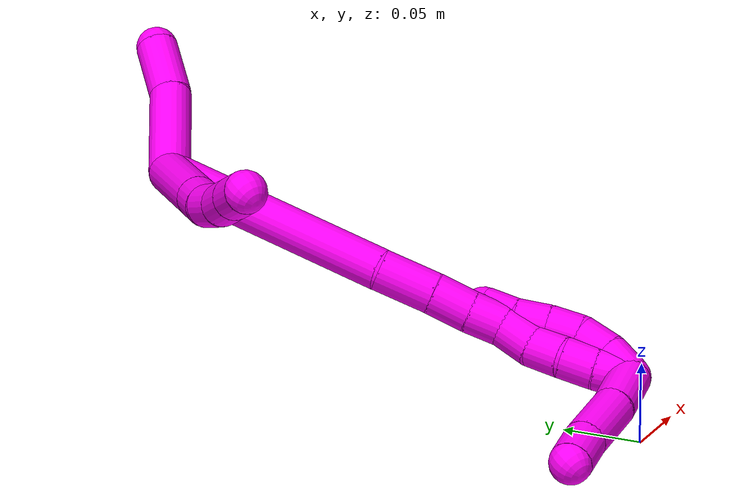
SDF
<sdf version="1.7">
 <world name="default">
  <model name="10">
   <static>0</static>
   <link name="10">
    <collision name="collision-cylinder-e_1_2_8">
     <pose>-0.01596 0.012603 -0.026974 -2.7045 -0.492077 1.69335</pose>
     <geometry><cylinder><radius>0.0125</radius><length>0.067562</length></cylinder></geometry>
     <surface>
      <friction><ode><mu>1.16</mu><mu2>1.16</mu2><slip1>0</slip1><slip2>0</slip2></ode></friction>
      <contact><ode><kp>1e+06</kp><kd>1</kd><max_vel>0</max_vel><min_depth>0.001</min_depth></ode></contact>
     </surface>
    </collision>
    <visual name="visual-cylinder-e_1_2_8">
     <pose>-0.01596 0.012603 -0.026974 -2.7045 -0.492077 1.69335</pose>
     <geometry><cylinder><radius>0.0125</radius><length>0.067562</length></cylinder></geometry>
     <material><ambient>1 0 0.964706 1</ambient></material>
    </visual>
    <collision name="collision-cylinder-e_2_8_9">
     <pose>-0.037316 0.029633 -0.062728 -2.67463 -0.501857 1.64569</pose>
     <geometry><cylinder><radius>0.0125</radius><length>0.022432</length></cylinder></geometry>
     <surface>
      <friction><ode><mu>1.16</mu><mu2>1.16</mu2><slip1>0</slip1><slip2>0</slip2></ode></friction>
      <contact><ode><kp>1e+06</kp><kd>1</kd><max_vel>0</max_vel><min_depth>0.001</min_depth></ode></contact>
     </surface>
    </collision>
    <visual name="visual-cylinder-e_2_8_9">
     <pose>-0.037316 0.029633 -0.062728 -2.67463 -0.501857 1.64569</pose>
     <geometry><cylinder><radius>0.0125</radius><length>0.022432</length></cylinder></geometry>
     <material><ambient>1 0 0.964706 1</ambient></material>
    </visual>
    <collision name="collision-cylinder-e_3_9_10">
     <pose>-0.049527 0.035805 -0.078617 -2.90077 -0.749785 2.54496</pose>
     <geometry><cylinder><radius>0.0125</radius><length>0.020004</length></cylinder></geometry>
     <surface>
      <friction><ode><mu>1.16</mu><mu2>1.16</mu2><slip1>0</slip1><slip2>0</slip2></ode></friction>
      <contact><ode><kp>1e+06</kp><kd>1</kd><max_vel>0</max_vel><min_depth>0.001</min_depth></ode></contact>
     </surface>
    </collision>
    <visual name="visual-cylinder-e_3_9_10">
     <pose>-0.049527 0.035805 -0.078617 -2.90077 -0.749785 2.54496</pose>
     <geometry><cylinder><radius>0.0125</radius><length>0.020004</length></cylinder></geometry>
     <material><ambient>1 0 0.964706 1</ambient></material>
    </visual>
    <collision name="collision-cylinder-e_4_10_11">
     <pose>-0.06421 0.039827 -0.091465 -2.76411 -0.905334 2.3931</pose>
     <geometry><cylinder><radius>0.0125</radius><length>0.02</length></cylinder></geometry>
     <surface>
      <friction><ode><mu>1.16</mu><mu2>1.16</mu2><slip1>0</slip1><slip2>0</slip2></ode></friction>
      <contact><ode><kp>1e+06</kp><kd>1</kd><max_vel>0</max_vel><min_depth>0.001</min_depth></ode></contact>
     </surface>
    </collision>
    <visual name="visual-cylinder-e_4_10_11">
     <pose>-0.06421 0.039827 -0.091465 -2.76411 -0.905334 2.3931</pose>
     <geometry><cylinder><radius>0.0125</radius><length>0.02</length></cylinder></geometry>
     <material><ambient>1 0 0.964706 1</ambient></material>
    </visual>
    <collision name="collision-cylinder-e_5_11_6">
     <pose>-0.079886 0.044473 -0.102985 -2.75244 -0.896098 2.36338</pose>
     <geometry><cylinder><radius>0.0125</radius><length>0.020002</length></cylinder></geometry>
     <surface>
      <friction><ode><mu>1.16</mu><mu2>1.16</mu2><slip1>0</slip1><slip2>0</slip2></ode></friction>
      <contact><ode><kp>1e+06</kp><kd>1</kd><max_vel>0</max_vel><min_depth>0.001</min_depth></ode></contact>
     </surface>
    </collision>
    <visual name="visual-cylinder-e_5_11_6">
     <pose>-0.079886 0.044473 -0.102985 -2.75244 -0.896098 2.36338</pose>
     <geometry><cylinder><radius>0.0125</radius><length>0.020002</length></cylinder></geometry>
     <material><ambient>1 0 0.964706 1</ambient></material>
    </visual>
    <collision name="collision-cylinder-e_1_2_12">
     <pose>-0.005033 -0.015796 0.026271 0.541356 -0.162727 -0.045247</pose>
     <geometry><cylinder><radius>0.0125</radius><length>0.062129</length></cylinder></geometry>
     <surface>
      <friction><ode><mu>1.16</mu><mu2>1.16</mu2><slip1>0</slip1><slip2>0</slip2></ode></friction>
      <contact><ode><kp>1e+06</kp><kd>1</kd><max_vel>0</max_vel><min_depth>0.001</min_depth></ode></contact>
     </surface>
    </collision>
    <visual name="visual-cylinder-e_1_2_12">
     <pose>-0.005033 -0.015796 0.026271 0.541356 -0.162727 -0.045247</pose>
     <geometry><cylinder><radius>0.0125</radius><length>0.062129</length></cylinder></geometry>
     <material><ambient>1 0 0.964706 1</ambient></material>
    </visual>
    <collision name="collision-cylinder-e_2_12_5">
     <pose>-0.013149 -0.037142 0.070381 0.301604 -0.163571 -0.02491</pose>
     <geometry><cylinder><radius>0.0125</radius><length>0.037871</length></cylinder></geometry>
     <surface>
      <friction><ode><mu>1.16</mu><mu2>1.16</mu2><slip1>0</slip1><slip2>0</slip2></ode></friction>
      <contact><ode><kp>1e+06</kp><kd>1</kd><max_vel>0</max_vel><min_depth>0.001</min_depth></ode></contact>
     </surface>
    </collision>
    <visual name="visual-cylinder-e_2_12_5">
     <pose>-0.013149 -0.037142 0.070381 0.301604 -0.163571 -0.02491</pose>
     <geometry><cylinder><radius>0.0125</radius><length>0.037871</length></cylinder></geometry>
     <material><ambient>1 0 0.964706 1</ambient></material>
    </visual>
    <collision name="collision-cylinder-e_1_2_13">
     <pose>-0.006511 -0.033233 -0.061341 2.64508 -0.093059 -0.363337</pose>
     <geometry><cylinder><radius>0.0125</radius><length>0.140137</length></cylinder></geometry>
     <surface>
      <friction><ode><mu>1.16</mu><mu2>1.16</mu2><slip1>0</slip1><slip2>0</slip2></ode></friction>
      <contact><ode><kp>1e+06</kp><kd>1</kd><max_vel>0</max_vel><min_depth>0.001</min_depth></ode></contact>
     </surface>
    </collision>
    <visual name="visual-cylinder-e_1_2_13">
     <pose>-0.006511 -0.033233 -0.061341 2.64508 -0.093059 -0.363337</pose>
     <geometry><cylinder><radius>0.0125</radius><length>0.140137</length></cylinder></geometry>
     <material><ambient>1 0 0.964706 1</ambient></material>
    </visual>
    <collision name="collision-cylinder-e_2_13_14">
     <pose>-0.013008 -0.076657 -0.136206 2.49582 0.00083 0.00248</pose>
     <geometry><cylinder><radius>0.0125</radius><length>0.033868</length></cylinder></geometry>
     <surface>
      <friction><ode><mu>1.16</mu><mu2>1.16</mu2><slip1>0</slip1><slip2>0</slip2></ode></friction>
      <contact><ode><kp>1e+06</kp><kd>1</kd><max_vel>0</max_vel><min_depth>0.001</min_depth></ode></contact>
     </surface>
    </collision>
    <visual name="visual-cylinder-e_2_13_14">
     <pose>-0.013008 -0.076657 -0.136206 2.49582 0.00083 0.00248</pose>
     <geometry><cylinder><radius>0.0125</radius><length>0.033868</length></cylinder></geometry>
     <material><ambient>1 0 0.964706 1</ambient></material>
    </visual>
    <collision name="collision-cylinder-e_3_14_15">
     <pose>-0.012419 -0.093823 -0.15931 2.51228 0.048504 0.148782</pose>
     <geometry><cylinder><radius>0.0125</radius><length>0.023727</length></cylinder></geometry>
     <surface>
      <friction><ode><mu>1.16</mu><mu2>1.16</mu2><slip1>0</slip1><slip2>0</slip2></ode></friction>
      <contact><ode><kp>1e+06</kp><kd>1</kd><max_vel>0</max_vel><min_depth>0.001</min_depth></ode></contact>
     </surface>
    </collision>
    <visual name="visual-cylinder-e_3_14_15">
     <pose>-0.012419 -0.093823 -0.15931 2.51228 0.048504 0.148782</pose>
     <geometry><cylinder><radius>0.0125</radius><length>0.023727</length></cylinder></geometry>
     <material><ambient>1 0 0.964706 1</ambient></material>
    </visual>
    <collision name="collision-cylinder-e_4_15_16">
     <pose>-0.012169 -0.107121 -0.177253 2.49421 -0.030982 -0.09229</pose>
     <geometry><cylinder><radius>0.0125</radius><length>0.020981</length></cylinder></geometry>
     <surface>
      <friction><ode><mu>1.16</mu><mu2>1.16</mu2><slip1>0</slip1><slip2>0</slip2></ode></friction>
      <contact><ode><kp>1e+06</kp><kd>1</kd><max_vel>0</max_vel><min_depth>0.001</min_depth></ode></contact>
     </surface>
    </collision>
    <visual name="visual-cylinder-e_4_15_16">
     <pose>-0.012169 -0.107121 -0.177253 2.49421 -0.030982 -0.09229</pose>
     <geometry><cylinder><radius>0.0125</radius><length>0.020981</length></cylinder></geometry>
     <material><ambient>1 0 0.964706 1</ambient></material>
    </visual>
    <collision name="collision-cylinder-e_5_16_17">
     <pose>-0.012345 -0.117109 -0.195533 2.78766 0.014055 0.078552</pose>
     <geometry><cylinder><radius>0.0125</radius><length>0.021144</length></cylinder></geometry>
     <surface>
      <friction><ode><mu>1.16</mu><mu2>1.16</mu2><slip1>0</slip1><slip2>0</slip2></ode></friction>
      <contact><ode><kp>1e+06</kp><kd>1</kd><max_vel>0</max_vel><min_depth>0.001</min_depth></ode></contact>
     </surface>
    </collision>
    <visual name="visual-cylinder-e_5_16_17">
     <pose>-0.012345 -0.117109 -0.195533 2.78766 0.014055 0.078552</pose>
     <geometry><cylinder><radius>0.0125</radius><length>0.021144</length></cylinder></geometry>
     <material><ambient>1 0 0.964706 1</ambient></material>
    </visual>
    <collision name="collision-cylinder-e_6_17_18">
     <pose>-0.0147 -0.124562 -0.214361 2.73962 -0.252919 -1.1158</pose>
     <geometry><cylinder><radius>0.0125</radius><length>0.020006</length></cylinder></geometry>
     <surface>
      <friction><ode><mu>1.16</mu><mu2>1.16</mu2><slip1>0</slip1><slip2>0</slip2></ode></friction>
      <contact><ode><kp>1e+06</kp><kd>1</kd><max_vel>0</max_vel><min_depth>0.001</min_depth></ode></contact>
     </surface>
    </collision>
    <visual name="visual-cylinder-e_6_17_18">
     <pose>-0.0147 -0.124562 -0.214361 2.73962 -0.252919 -1.1158</pose>
     <geometry><cylinder><radius>0.0125</radius><length>0.020006</length></cylinder></geometry>
     <material><ambient>1 0 0.964706 1</ambient></material>
    </visual>
    <collision name="collision-cylinder-e_7_18_19">
     <pose>-0.018711 -0.133779 -0.231593 2.5634 -0.150718 -0.497194</pose>
     <geometry><cylinder><radius>0.0125</radius><length>0.020095</length></cylinder></geometry>
     <surface>
      <friction><ode><mu>1.16</mu><mu2>1.16</mu2><slip1>0</slip1><slip2>0</slip2></ode></friction>
      <contact><ode><kp>1e+06</kp><kd>1</kd><max_vel>0</max_vel><min_depth>0.001</min_depth></ode></contact>
     </surface>
    </collision>
    <visual name="visual-cylinder-e_7_18_19">
     <pose>-0.018711 -0.133779 -0.231593 2.5634 -0.150718 -0.497194</pose>
     <geometry><cylinder><radius>0.0125</radius><length>0.020095</length></cylinder></geometry>
     <material><ambient>1 0 0.964706 1</ambient></material>
    </visual>
    <collision name="collision-cylinder-e_8_19_1">
     <pose>-0.022389 -0.145104 -0.24772 2.4948 -0.218139 -0.631568</pose>
     <geometry><cylinder><radius>0.0125</radius><length>0.020043</length></cylinder></geometry>
     <surface>
      <friction><ode><mu>1.16</mu><mu2>1.16</mu2><slip1>0</slip1><slip2>0</slip2></ode></friction>
      <contact><ode><kp>1e+06</kp><kd>1</kd><max_vel>0</max_vel><min_depth>0.001</min_depth></ode></contact>
     </surface>
    </collision>
    <visual name="visual-cylinder-e_8_19_1">
     <pose>-0.022389 -0.145104 -0.24772 2.4948 -0.218139 -0.631568</pose>
     <geometry><cylinder><radius>0.0125</radius><length>0.020043</length></cylinder></geometry>
     <material><ambient>1 0 0.964706 1</ambient></material>
    </visual>
    <collision name="collision-cylinder-e_1_1_20">
     <pose>-0.025497 -0.13668 -0.264982 -2.15434 -0.054725 0.101647</pose>
     <geometry><cylinder><radius>0.0125</radius><length>0.034371</length></cylinder></geometry>
     <surface>
      <friction><ode><mu>1.16</mu><mu2>1.16</mu2><slip1>0</slip1><slip2>0</slip2></ode></friction>
      <contact><ode><kp>1e+06</kp><kd>1</kd><max_vel>0</max_vel><min_depth>0.001</min_depth></ode></contact>
     </surface>
    </collision>
    <visual name="visual-cylinder-e_1_1_20">
     <pose>-0.025497 -0.13668 -0.264982 -2.15434 -0.054725 0.101647</pose>
     <geometry><cylinder><radius>0.0125</radius><length>0.034371</length></cylinder></geometry>
     <material><ambient>1 0 0.964706 1</ambient></material>
    </visual>
    <collision name="collision-cylinder-e_2_20_21">
     <pose>-0.02725 -0.104009 -0.283508 -2.02985 -0.039678 0.063858</pose>
     <geometry><cylinder><radius>0.0125</radius><length>0.040973</length></cylinder></geometry>
     <surface>
      <friction><ode><mu>1.16</mu><mu2>1.16</mu2><slip1>0</slip1><slip2>0</slip2></ode></friction>
      <contact><ode><kp>1e+06</kp><kd>1</kd><max_vel>0</max_vel><min_depth>0.001</min_depth></ode></contact>
     </surface>
    </collision>
    <visual name="visual-cylinder-e_2_20_21">
     <pose>-0.02725 -0.104009 -0.283508 -2.02985 -0.039678 0.063858</pose>
     <geometry><cylinder><radius>0.0125</radius><length>0.040973</length></cylinder></geometry>
     <material><ambient>1 0 0.964706 1</ambient></material>
    </visual>
    <collision name="collision-cylinder-e_3_21_4">
     <pose>-0.028841 -0.075165 -0.299002 -2.12018 -0.063173 0.11267</pose>
     <geometry><cylinder><radius>0.0125</radius><length>0.024656</length></cylinder></geometry>
     <surface>
      <friction><ode><mu>1.16</mu><mu2>1.16</mu2><slip1>0</slip1><slip2>0</slip2></ode></friction>
      <contact><ode><kp>1e+06</kp><kd>1</kd><max_vel>0</max_vel><min_depth>0.001</min_depth></ode></contact>
     </surface>
    </collision>
    <visual name="visual-cylinder-e_3_21_4">
     <pose>-0.028841 -0.075165 -0.299002 -2.12018 -0.063173 0.11267</pose>
     <geometry><cylinder><radius>0.0125</radius><length>0.024656</length></cylinder></geometry>
     <material><ambient>1 0 0.964706 1</ambient></material>
    </visual>
    <collision name="collision-cylinder-e_1_1_22">
     <pose>-0.024559 -0.150811 -0.245529 -0.018905 -0.000174 2e-06</pose>
     <geometry><cylinder><radius>0.0125</radius><length>0.02</length></cylinder></geometry>
     <surface>
      <friction><ode><mu>1.16</mu><mu2>1.16</mu2><slip1>0</slip1><slip2>0</slip2></ode></friction>
      <contact><ode><kp>1e+06</kp><kd>1</kd><max_vel>0</max_vel><min_depth>0.001</min_depth></ode></contact>
     </surface>
    </collision>
    <visual name="visual-cylinder-e_1_1_22">
     <pose>-0.024559 -0.150811 -0.245529 -0.018905 -0.000174 2e-06</pose>
     <geometry><cylinder><radius>0.0125</radius><length>0.02</length></cylinder></geometry>
     <material><ambient>1 0 0.964706 1</ambient></material>
    </visual>
    <collision name="collision-cylinder-e_2_22_23">
     <pose>-0.02399 -0.147521 -0.226041 -0.315834 0.057104 -0.009096</pose>
     <geometry><cylinder><radius>0.0125</radius><length>0.02</length></cylinder></geometry>
     <surface>
      <friction><ode><mu>1.16</mu><mu2>1.16</mu2><slip1>0</slip1><slip2>0</slip2></ode></friction>
      <contact><ode><kp>1e+06</kp><kd>1</kd><max_vel>0</max_vel><min_depth>0.001</min_depth></ode></contact>
     </surface>
    </collision>
    <visual name="visual-cylinder-e_2_22_23">
     <pose>-0.02399 -0.147521 -0.226041 -0.315834 0.057104 -0.009096</pose>
     <geometry><cylinder><radius>0.0125</radius><length>0.02</length></cylinder></geometry>
     <material><ambient>1 0 0.964706 1</ambient></material>
    </visual>
    <collision name="collision-cylinder-e_3_23_24">
     <pose>-0.021334 -0.139374 -0.208173 -0.542115 0.210085 -0.058581</pose>
     <geometry><cylinder><radius>0.0125</radius><length>0.02</length></cylinder></geometry>
     <surface>
      <friction><ode><mu>1.16</mu><mu2>1.16</mu2><slip1>0</slip1><slip2>0</slip2></ode></friction>
      <contact><ode><kp>1e+06</kp><kd>1</kd><max_vel>0</max_vel><min_depth>0.001</min_depth></ode></contact>
     </surface>
    </collision>
    <visual name="visual-cylinder-e_3_23_24">
     <pose>-0.021334 -0.139374 -0.208173 -0.542115 0.210085 -0.058581</pose>
     <geometry><cylinder><radius>0.0125</radius><length>0.02</length></cylinder></geometry>
     <material><ambient>1 0 0.964706 1</ambient></material>
    </visual>
    <collision name="collision-cylinder-e_4_24_25">
     <pose>-0.017023 -0.127912 -0.192455 -0.718294 0.224429 -0.084562</pose>
     <geometry><cylinder><radius>0.0125</radius><length>0.02</length></cylinder></geometry>
     <surface>
      <friction><ode><mu>1.16</mu><mu2>1.16</mu2><slip1>0</slip1><slip2>0</slip2></ode></friction>
      <contact><ode><kp>1e+06</kp><kd>1</kd><max_vel>0</max_vel><min_depth>0.001</min_depth></ode></contact>
     </surface>
    </collision>
    <visual name="visual-cylinder-e_4_24_25">
     <pose>-0.017023 -0.127912 -0.192455 -0.718294 0.224429 -0.084562</pose>
     <geometry><cylinder><radius>0.0125</radius><length>0.02</length></cylinder></geometry>
     <material><ambient>1 0 0.964706 1</ambient></material>
    </visual>
    <collision name="collision-cylinder-e_5_25_3">
     <pose>-0.012623 -0.117272 -0.176315 -0.447609 0.219162 -0.050075</pose>
     <geometry><cylinder><radius>0.0125</radius><length>0.02</length></cylinder></geometry>
     <surface>
      <friction><ode><mu>1.16</mu><mu2>1.16</mu2><slip1>0</slip1><slip2>0</slip2></ode></friction>
      <contact><ode><kp>1e+06</kp><kd>1</kd><max_vel>0</max_vel><min_depth>0.001</min_depth></ode></contact>
     </surface>
    </collision>
    <visual name="visual-cylinder-e_5_25_3">
     <pose>-0.012623 -0.117272 -0.176315 -0.447609 0.219162 -0.050075</pose>
     <geometry><cylinder><radius>0.0125</radius><length>0.02</length></cylinder></geometry>
     <material><ambient>1 0 0.964706 1</ambient></material>
    </visual>
    <collision name="collision-sphere-3">
     <pose>-0.010449 -0.113047 -0.167516 0 -0 0</pose>
     <geometry><sphere><radius>0.0125</radius></sphere></geometry>
     <surface>
      <friction><ode><mu>1.16</mu><mu2>1.16</mu2><slip1>0</slip1><slip2>0</slip2></ode></friction>
      <contact><ode><kp>1e+06</kp><kd>1</kd><max_vel>0</max_vel><min_depth>0.001</min_depth></ode></contact>
     </surface>
    </collision>
    <visual name="visual-sphere-3">
     <pose>-0.010449 -0.113047 -0.167516 0 -0 0</pose>
     <geometry><sphere><radius>0.0125</radius></sphere></geometry>
     <material><ambient>1 0 0.964706 1</ambient></material>
    </visual>
    <collision name="collision-sphere-25">
     <pose>-0.014797 -0.121496 -0.185115 0 -0 0</pose>
     <geometry><sphere><radius>0.0125</radius></sphere></geometry>
     <surface>
      <friction><ode><mu>1.16</mu><mu2>1.16</mu2><slip1>0</slip1><slip2>0</slip2></ode></friction>
      <contact><ode><kp>1e+06</kp><kd>1</kd><max_vel>0</max_vel><min_depth>0.001</min_depth></ode></contact>
     </surface>
    </collision>
    <visual name="visual-sphere-25">
     <pose>-0.014797 -0.121496 -0.185115 0 -0 0</pose>
     <geometry><sphere><radius>0.0125</radius></sphere></geometry>
     <material><ambient>1 0 0.964706 1</ambient></material>
    </visual>
    <collision name="collision-sphere-24">
     <pose>-0.019248 -0.134328 -0.199795 0 -0 0</pose>
     <geometry><sphere><radius>0.0125</radius></sphere></geometry>
     <surface>
      <friction><ode><mu>1.16</mu><mu2>1.16</mu2><slip1>0</slip1><slip2>0</slip2></ode></friction>
      <contact><ode><kp>1e+06</kp><kd>1</kd><max_vel>0</max_vel><min_depth>0.001</min_depth></ode></contact>
     </surface>
    </collision>
    <visual name="visual-sphere-24">
     <pose>-0.019248 -0.134328 -0.199795 0 -0 0</pose>
     <geometry><sphere><radius>0.0125</radius></sphere></geometry>
     <material><ambient>1 0 0.964706 1</ambient></material>
    </visual>
    <collision name="collision-sphere-23">
     <pose>-0.023419 -0.14442 -0.216551 0 -0 0</pose>
     <geometry><sphere><radius>0.0125</radius></sphere></geometry>
     <surface>
      <friction><ode><mu>1.16</mu><mu2>1.16</mu2><slip1>0</slip1><slip2>0</slip2></ode></friction>
      <contact><ode><kp>1e+06</kp><kd>1</kd><max_vel>0</max_vel><min_depth>0.001</min_depth></ode></contact>
     </surface>
    </collision>
    <visual name="visual-sphere-23">
     <pose>-0.023419 -0.14442 -0.216551 0 -0 0</pose>
     <geometry><sphere><radius>0.0125</radius></sphere></geometry>
     <material><ambient>1 0 0.964706 1</ambient></material>
    </visual>
    <collision name="collision-sphere-22">
     <pose>-0.024561 -0.150622 -0.235531 0 -0 0</pose>
     <geometry><sphere><radius>0.0125</radius></sphere></geometry>
     <surface>
      <friction><ode><mu>1.16</mu><mu2>1.16</mu2><slip1>0</slip1><slip2>0</slip2></ode></friction>
      <contact><ode><kp>1e+06</kp><kd>1</kd><max_vel>0</max_vel><min_depth>0.001</min_depth></ode></contact>
     </surface>
    </collision>
    <visual name="visual-sphere-22">
     <pose>-0.024561 -0.150622 -0.235531 0 -0 0</pose>
     <geometry><sphere><radius>0.0125</radius></sphere></geometry>
     <material><ambient>1 0 0.964706 1</ambient></material>
    </visual>
    <collision name="collision-sphere-4">
     <pose>-0.029619 -0.064672 -0.305427 0 -0 0</pose>
     <geometry><sphere><radius>0.0125</radius></sphere></geometry>
     <surface>
      <friction><ode><mu>1.16</mu><mu2>1.16</mu2><slip1>0</slip1><slip2>0</slip2></ode></friction>
      <contact><ode><kp>1e+06</kp><kd>1</kd><max_vel>0</max_vel><min_depth>0.001</min_depth></ode></contact>
     </surface>
    </collision>
    <visual name="visual-sphere-4">
     <pose>-0.029619 -0.064672 -0.305427 0 -0 0</pose>
     <geometry><sphere><radius>0.0125</radius></sphere></geometry>
     <material><ambient>1 0 0.964706 1</ambient></material>
    </visual>
    <collision name="collision-sphere-21">
     <pose>-0.028063 -0.085658 -0.292578 0 -0 0</pose>
     <geometry><sphere><radius>0.0125</radius></sphere></geometry>
     <surface>
      <friction><ode><mu>1.16</mu><mu2>1.16</mu2><slip1>0</slip1><slip2>0</slip2></ode></friction>
      <contact><ode><kp>1e+06</kp><kd>1</kd><max_vel>0</max_vel><min_depth>0.001</min_depth></ode></contact>
     </surface>
    </collision>
    <visual name="visual-sphere-21">
     <pose>-0.028063 -0.085658 -0.292578 0 -0 0</pose>
     <geometry><sphere><radius>0.0125</radius></sphere></geometry>
     <material><ambient>1 0 0.964706 1</ambient></material>
    </visual>
    <collision name="collision-sphere-20">
     <pose>-0.026437 -0.12236 -0.274437 0 -0 0</pose>
     <geometry><sphere><radius>0.0125</radius></sphere></geometry>
     <surface>
      <friction><ode><mu>1.16</mu><mu2>1.16</mu2><slip1>0</slip1><slip2>0</slip2></ode></friction>
      <contact><ode><kp>1e+06</kp><kd>1</kd><max_vel>0</max_vel><min_depth>0.001</min_depth></ode></contact>
     </surface>
    </collision>
    <visual name="visual-sphere-20">
     <pose>-0.026437 -0.12236 -0.274437 0 -0 0</pose>
     <geometry><sphere><radius>0.0125</radius></sphere></geometry>
     <material><ambient>1 0 0.964706 1</ambient></material>
    </visual>
    <collision name="collision-sphere-6">
     <pose>-0.087696 0.046843 -0.108765 0 -0 0</pose>
     <geometry><sphere><radius>0.0125</radius></sphere></geometry>
     <surface>
      <friction><ode><mu>1.16</mu><mu2>1.16</mu2><slip1>0</slip1><slip2>0</slip2></ode></friction>
      <contact><ode><kp>1e+06</kp><kd>1</kd><max_vel>0</max_vel><min_depth>0.001</min_depth></ode></contact>
     </surface>
    </collision>
    <visual name="visual-sphere-6">
     <pose>-0.087696 0.046843 -0.108765 0 -0 0</pose>
     <geometry><sphere><radius>0.0125</radius></sphere></geometry>
     <material><ambient>1 0 0.964706 1</ambient></material>
    </visual>
    <collision name="collision-sphere-11">
     <pose>-0.072076 0.042102 -0.097205 0 -0 0</pose>
     <geometry><sphere><radius>0.0125</radius></sphere></geometry>
     <surface>
      <friction><ode><mu>1.16</mu><mu2>1.16</mu2><slip1>0</slip1><slip2>0</slip2></ode></friction>
      <contact><ode><kp>1e+06</kp><kd>1</kd><max_vel>0</max_vel><min_depth>0.001</min_depth></ode></contact>
     </surface>
    </collision>
    <visual name="visual-sphere-11">
     <pose>-0.072076 0.042102 -0.097205 0 -0 0</pose>
     <geometry><sphere><radius>0.0125</radius></sphere></geometry>
     <material><ambient>1 0 0.964706 1</ambient></material>
    </visual>
    <collision name="collision-sphere-10">
     <pose>-0.056343 0.037551 -0.085725 0 -0 0</pose>
     <geometry><sphere><radius>0.0125</radius></sphere></geometry>
     <surface>
      <friction><ode><mu>1.16</mu><mu2>1.16</mu2><slip1>0</slip1><slip2>0</slip2></ode></friction>
      <contact><ode><kp>1e+06</kp><kd>1</kd><max_vel>0</max_vel><min_depth>0.001</min_depth></ode></contact>
     </surface>
    </collision>
    <visual name="visual-sphere-10">
     <pose>-0.056343 0.037551 -0.085725 0 -0 0</pose>
     <geometry><sphere><radius>0.0125</radius></sphere></geometry>
     <material><ambient>1 0 0.964706 1</ambient></material>
    </visual>
    <collision name="collision-sphere-9">
     <pose>-0.042711 0.034059 -0.071508 0 -0 0</pose>
     <geometry><sphere><radius>0.0125</radius></sphere></geometry>
     <surface>
      <friction><ode><mu>1.16</mu><mu2>1.16</mu2><slip1>0</slip1><slip2>0</slip2></ode></friction>
      <contact><ode><kp>1e+06</kp><kd>1</kd><max_vel>0</max_vel><min_depth>0.001</min_depth></ode></contact>
     </surface>
    </collision>
    <visual name="visual-sphere-9">
     <pose>-0.042711 0.034059 -0.071508 0 -0 0</pose>
     <geometry><sphere><radius>0.0125</radius></sphere></geometry>
     <material><ambient>1 0 0.964706 1</ambient></material>
    </visual>
    <collision name="collision-sphere-2">
     <geometry><sphere><radius>0.0125</radius></sphere></geometry>
     <surface>
      <friction><ode><mu>1.16</mu><mu2>1.16</mu2><slip1>0</slip1><slip2>0</slip2></ode></friction>
      <contact><ode><kp>1e+06</kp><kd>1</kd><max_vel>0</max_vel><min_depth>0.001</min_depth></ode></contact>
     </surface>
    </collision>
    <visual name="visual-sphere-2">
     <geometry><sphere><radius>0.0125</radius></sphere></geometry>
     <material><ambient>1 0 0.964706 1</ambient></material>
    </visual>
    <collision name="collision-sphere-19">
     <pose>-0.02022 -0.139208 -0.239912 0 -0 0</pose>
     <geometry><sphere><radius>0.0125</radius></sphere></geometry>
     <surface>
      <friction><ode><mu>1.16</mu><mu2>1.16</mu2><slip1>0</slip1><slip2>0</slip2></ode></friction>
      <contact><ode><kp>1e+06</kp><kd>1</kd><max_vel>0</max_vel><min_depth>0.001</min_depth></ode></contact>
     </surface>
    </collision>
    <visual name="visual-sphere-19">
     <pose>-0.02022 -0.139208 -0.239912 0 -0 0</pose>
     <geometry><sphere><radius>0.0125</radius></sphere></geometry>
     <material><ambient>1 0 0.964706 1</ambient></material>
    </visual>
    <collision name="collision-sphere-8">
     <pose>-0.03192 0.025206 -0.053948 0 -0 0</pose>
     <geometry><sphere><radius>0.0125</radius></sphere></geometry>
     <surface>
      <friction><ode><mu>1.16</mu><mu2>1.16</mu2><slip1>0</slip1><slip2>0</slip2></ode></friction>
      <contact><ode><kp>1e+06</kp><kd>1</kd><max_vel>0</max_vel><min_depth>0.001</min_depth></ode></contact>
     </surface>
    </collision>
    <visual name="visual-sphere-8">
     <pose>-0.03192 0.025206 -0.053948 0 -0 0</pose>
     <geometry><sphere><radius>0.0125</radius></sphere></geometry>
     <material><ambient>1 0 0.964706 1</ambient></material>
    </visual>
    <collision name="collision-sphere-12">
     <pose>-0.010065 -0.031592 0.052542 0 -0 0</pose>
     <geometry><sphere><radius>0.0125</radius></sphere></geometry>
     <surface>
      <friction><ode><mu>1.16</mu><mu2>1.16</mu2><slip1>0</slip1><slip2>0</slip2></ode></friction>
      <contact><ode><kp>1e+06</kp><kd>1</kd><max_vel>0</max_vel><min_depth>0.001</min_depth></ode></contact>
     </surface>
    </collision>
    <visual name="visual-sphere-12">
     <pose>-0.010065 -0.031592 0.052542 0 -0 0</pose>
     <geometry><sphere><radius>0.0125</radius></sphere></geometry>
     <material><ambient>1 0 0.964706 1</ambient></material>
    </visual>
    <collision name="collision-sphere-5">
     <pose>-0.016233 -0.042692 0.088221 0 -0 0</pose>
     <geometry><sphere><radius>0.0125</radius></sphere></geometry>
     <surface>
      <friction><ode><mu>1.16</mu><mu2>1.16</mu2><slip1>0</slip1><slip2>0</slip2></ode></friction>
      <contact><ode><kp>1e+06</kp><kd>1</kd><max_vel>0</max_vel><min_depth>0.001</min_depth></ode></contact>
     </surface>
    </collision>
    <visual name="visual-sphere-5">
     <pose>-0.016233 -0.042692 0.088221 0 -0 0</pose>
     <geometry><sphere><radius>0.0125</radius></sphere></geometry>
     <material><ambient>1 0 0.964706 1</ambient></material>
    </visual>
    <collision name="collision-sphere-13">
     <pose>-0.013022 -0.066466 -0.122682 0 -0 0</pose>
     <geometry><sphere><radius>0.0125</radius></sphere></geometry>
     <surface>
      <friction><ode><mu>1.16</mu><mu2>1.16</mu2><slip1>0</slip1><slip2>0</slip2></ode></friction>
      <contact><ode><kp>1e+06</kp><kd>1</kd><max_vel>0</max_vel><min_depth>0.001</min_depth></ode></contact>
     </surface>
    </collision>
    <visual name="visual-sphere-13">
     <pose>-0.013022 -0.066466 -0.122682 0 -0 0</pose>
     <geometry><sphere><radius>0.0125</radius></sphere></geometry>
     <material><ambient>1 0 0.964706 1</ambient></material>
    </visual>
    <collision name="collision-sphere-14">
     <pose>-0.012994 -0.086848 -0.14973 0 -0 0</pose>
     <geometry><sphere><radius>0.0125</radius></sphere></geometry>
     <surface>
      <friction><ode><mu>1.16</mu><mu2>1.16</mu2><slip1>0</slip1><slip2>0</slip2></ode></friction>
      <contact><ode><kp>1e+06</kp><kd>1</kd><max_vel>0</max_vel><min_depth>0.001</min_depth></ode></contact>
     </surface>
    </collision>
    <visual name="visual-sphere-14">
     <pose>-0.012994 -0.086848 -0.14973 0 -0 0</pose>
     <geometry><sphere><radius>0.0125</radius></sphere></geometry>
     <material><ambient>1 0 0.964706 1</ambient></material>
    </visual>
    <collision name="collision-sphere-15">
     <pose>-0.011844 -0.100797 -0.168889 0 -0 0</pose>
     <geometry><sphere><radius>0.0125</radius></sphere></geometry>
     <surface>
      <friction><ode><mu>1.16</mu><mu2>1.16</mu2><slip1>0</slip1><slip2>0</slip2></ode></friction>
      <contact><ode><kp>1e+06</kp><kd>1</kd><max_vel>0</max_vel><min_depth>0.001</min_depth></ode></contact>
     </surface>
    </collision>
    <visual name="visual-sphere-15">
     <pose>-0.011844 -0.100797 -0.168889 0 -0 0</pose>
     <geometry><sphere><radius>0.0125</radius></sphere></geometry>
     <material><ambient>1 0 0.964706 1</ambient></material>
    </visual>
    <collision name="collision-sphere-16">
     <pose>-0.012494 -0.113445 -0.185617 0 -0 0</pose>
     <geometry><sphere><radius>0.0125</radius></sphere></geometry>
     <surface>
      <friction><ode><mu>1.16</mu><mu2>1.16</mu2><slip1>0</slip1><slip2>0</slip2></ode></friction>
      <contact><ode><kp>1e+06</kp><kd>1</kd><max_vel>0</max_vel><min_depth>0.001</min_depth></ode></contact>
     </surface>
    </collision>
    <visual name="visual-sphere-16">
     <pose>-0.012494 -0.113445 -0.185617 0 -0 0</pose>
     <geometry><sphere><radius>0.0125</radius></sphere></geometry>
     <material><ambient>1 0 0.964706 1</ambient></material>
    </visual>
    <collision name="collision-sphere-17">
     <pose>-0.012196 -0.120773 -0.205448 0 -0 0</pose>
     <geometry><sphere><radius>0.0125</radius></sphere></geometry>
     <surface>
      <friction><ode><mu>1.16</mu><mu2>1.16</mu2><slip1>0</slip1><slip2>0</slip2></ode></friction>
      <contact><ode><kp>1e+06</kp><kd>1</kd><max_vel>0</max_vel><min_depth>0.001</min_depth></ode></contact>
     </surface>
    </collision>
    <visual name="visual-sphere-17">
     <pose>-0.012196 -0.120773 -0.205448 0 -0 0</pose>
     <geometry><sphere><radius>0.0125</radius></sphere></geometry>
     <material><ambient>1 0 0.964706 1</ambient></material>
    </visual>
    <collision name="collision-sphere-18">
     <pose>-0.017203 -0.128351 -0.223274 0 -0 0</pose>
     <geometry><sphere><radius>0.0125</radius></sphere></geometry>
     <surface>
      <friction><ode><mu>1.16</mu><mu2>1.16</mu2><slip1>0</slip1><slip2>0</slip2></ode></friction>
      <contact><ode><kp>1e+06</kp><kd>1</kd><max_vel>0</max_vel><min_depth>0.001</min_depth></ode></contact>
     </surface>
    </collision>
    <visual name="visual-sphere-18">
     <pose>-0.017203 -0.128351 -0.223274 0 -0 0</pose>
     <geometry><sphere><radius>0.0125</radius></sphere></geometry>
     <material><ambient>1 0 0.964706 1</ambient></material>
    </visual>
    <collision name="collision-sphere-1">
     <pose>-0.024557 -0.151 -0.255527 0 -0 0</pose>
     <geometry><sphere><radius>0.0125</radius></sphere></geometry>
     <surface>
      <friction><ode><mu>1.16</mu><mu2>1.16</mu2><slip1>0</slip1><slip2>0</slip2></ode></friction>
      <contact><ode><kp>1e+06</kp><kd>1</kd><max_vel>0</max_vel><min_depth>0.001</min_depth></ode></contact>
     </surface>
    </collision>
    <visual name="visual-sphere-1">
     <pose>-0.024557 -0.151 -0.255527 0 -0 0</pose>
     <geometry><sphere><radius>0.0125</radius></sphere></geometry>
     <material><ambient>1 0 0.964706 1</ambient></material>
    </visual>
    <inertial>
     <pose>-0.019435 -0.060309 -0.122946 0 -0 0</pose>
     <mass>0.75</mass>
     <inertia>
      <ixx>0.000208</ixx>
      <ixy>0</ixy>
      <ixz>0</ixz>
      <iyy>-0.000221</iyy>
      <iyz>0</iyz>
      <izz>0.000131</izz>
     </inertia>
    </inertial>
   </link>
   <pose>-0.111422 0.256338 0.165688 0.018712 1.09872 1.14958</pose>
  </model>
 </world>
</sdf>
